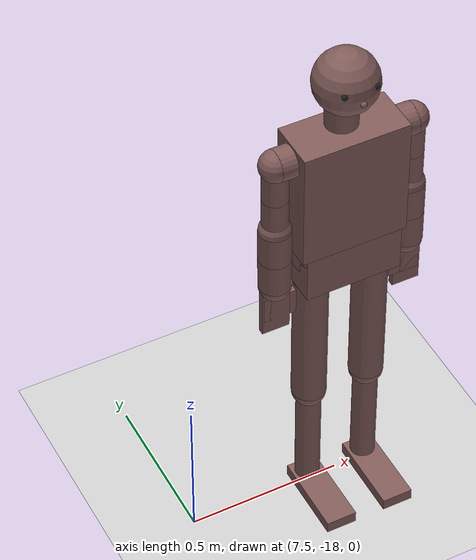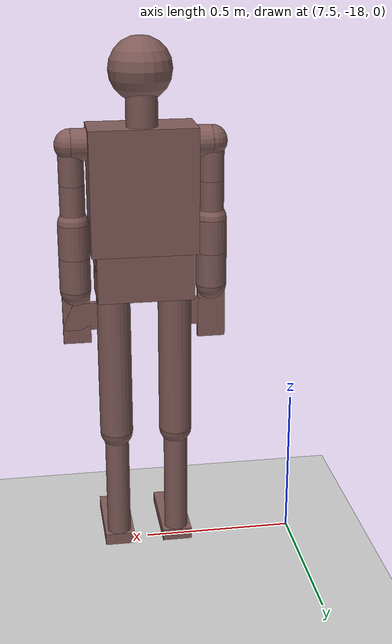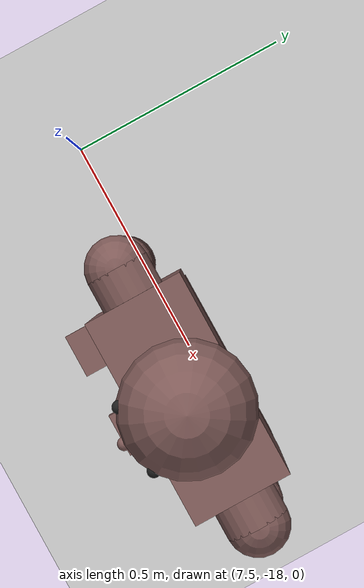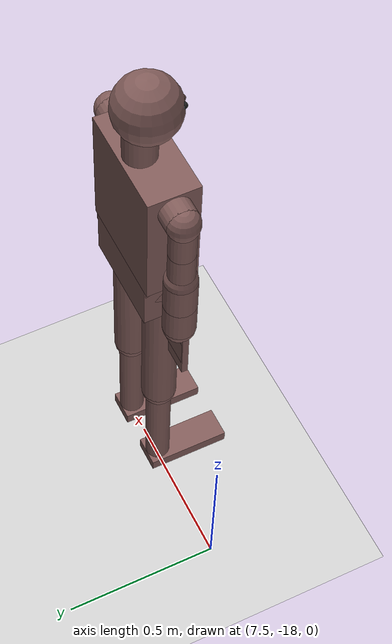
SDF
<sdf version="1.6">
 <world name="default">
  <model name="ground_plane">
   <static>1</static>
   <link name="link">
    <collision name="collision">
     <geometry><plane><normal>0 0 1</normal><size>100 100</size></plane></geometry>
     <surface><friction><ode><mu>100</mu><mu2>50</mu2></ode></friction></surface>
    </collision>
    <visual name="visual">
     <cast_shadows>0</cast_shadows>
     <geometry><plane><normal>0 0 1</normal><size>100 100</size></plane></geometry>
     <material>
      <script><uri>file://media/materials/scripts/gazebo.material</uri><name>Gazebo/Grey</name></script>
     </material>
    </visual>
   </link>
  </model>
  <model name="victim175">
   <static>1</static>
   <self_collide>1</self_collide>
   <link name="head">
    <pose>0 0 1.625 0 -0 0</pose>
    <visual name="visual">
     <geometry><sphere><radius>0.1</radius></sphere></geometry>
     <material>
      <emissive>0.5 0.355 0.345 1</emissive>
      <ambient>0.5 0.355 0.345 1</ambient>
      <diffuse>0.5 0.355 0.345 1</diffuse>
      <specular>0 0 0 0</specular>
     </material>
    </visual>
    <collision name="collision"><geometry><sphere><radius>0.1</radius></sphere></geometry></collision>
    <visual name="visual_nose">
     <pose>0 -0.1 -0.01 0 -0 0</pose>
     <geometry><sphere><radius>0.01</radius></sphere></geometry>
     <material>
      <emissive>0.5 0.355 0.345 1</emissive>
      <ambient>0.5 0.355 0.345 1</ambient>
      <diffuse>0.5 0.355 0.345 1</diffuse>
      <specular>0 0 0 0</specular>
     </material>
    </visual>
    <visual name="visual_rEye">
     <pose>-0.05 -0.08 0.02 0 -0 0</pose>
     <geometry><sphere><radius>0.01</radius></sphere></geometry>
     <material>
      <script><uri>file://media/materials/scripts/gazebo.material</uri><name>Gazebo/Black</name></script>
     </material>
    </visual>
    <visual name="visual_lEye">
     <pose>0.05 -0.08 0.02 0 -0 0</pose>
     <geometry><sphere><radius>0.01</radius></sphere></geometry>
     <material>
      <script><uri>file://media/materials/scripts/gazebo.material</uri><name>Gazebo/Black</name></script>
     </material>
    </visual>
    <self_collide>1</self_collide>
   </link>
   <link name="neck">
    <pose>0 0.02 1.49 0 -0 0</pose>
    <visual name="visual">
     <geometry><cylinder><radius>0.05</radius><length>0.15</length></cylinder></geometry>
     <material>
      <emissive>0.5 0.355 0.345 1</emissive>
      <ambient>0.5 0.355 0.345 1</ambient>
      <diffuse>0.5 0.355 0.345 1</diffuse>
      <specular>0 0 0 0</specular>
     </material>
    </visual>
    <collision name="collision">
     <geometry><cylinder><radius>0.05</radius><length>0.15</length></cylinder></geometry>
    </collision>
    <self_collide>1</self_collide>
   </link>
   <joint name="neck_head" type="revolute">
    <pose>0 0.02 -0.075 0 -0 0</pose>
    <child>head</child>
    <parent>neck</parent>
    <axis>
     <xyz>0 0 -1</xyz>
     <limit><lower>-1.7</lower><upper>1.7</upper></limit>
     <dynamics>
      <friction>0.01</friction>
      <spring_reference>0</spring_reference>
      <spring_stiffness>0</spring_stiffness>
     </dynamics>
     <use_parent_model_frame>0</use_parent_model_frame>
    </axis>
   </joint>
   <link name="body">
    <pose>0 0 1.255 0 -0 0</pose>
    <visual name="visual">
     <geometry><box><size>0.34 0.16 0.4</size></box></geometry>
     <material>
      <emissive>0.5 0.355 0.345 1</emissive>
      <ambient>0.5 0.355 0.345 1</ambient>
      <diffuse>0.5 0.355 0.345 1</diffuse>
      <specular>0 0 0 0</specular>
     </material>
    </visual>
    <collision name="collision"><geometry><box><size>0.34 0.16 0.4</size></box></geometry></collision>
    <self_collide>1</self_collide>
   </link>
   <joint name="body_neck" type="revolute">
    <pose>0 0.06 -0.075 0 -0 0</pose>
    <child>neck</child>
    <parent>body</parent>
    <axis>
     <xyz>1 0 0</xyz>
     <limit><lower>-0.2</lower><upper>1</upper></limit>
     <dynamics>
      <friction>0.01</friction>
      <spring_reference>0</spring_reference>
      <spring_stiffness>0</spring_stiffness>
     </dynamics>
     <use_parent_model_frame>0</use_parent_model_frame>
    </axis>
   </joint>
   <link name="waist">
    <pose>0 0 1.005 0 -0 0</pose>
    <visual name="visual">
     <pose>0 0 -0.025 0 -0 0</pose>
     <geometry><box><size>0.31 0.16 0.15</size></box></geometry>
     <material>
      <emissive>0.5 0.355 0.345 1</emissive>
      <ambient>0.5 0.355 0.345 1</ambient>
      <diffuse>0.5 0.355 0.345 1</diffuse>
      <specular>0 0 0 0</specular>
     </material>
    </visual>
    <collision name="collision"><geometry><box><size>0.31 0.16 0.1</size></box></geometry></collision>
    <visual name="visual2">
     <pose>0 0 0.05 3.14159 1.57079 3.14159</pose>
     <geometry><cylinder><radius>0.08</radius><length>0.31</length></cylinder></geometry>
     <material>
      <emissive>0.5 0.355 0.345 1</emissive>
      <ambient>0.5 0.355 0.345 1</ambient>
      <diffuse>0.5 0.355 0.345 1</diffuse>
      <specular>0 0 0 0</specular>
     </material>
    </visual>
    <collision name="collision2">
     <pose>0 0 0.05 3.14159 1.57079 3.14159</pose>
     <geometry><cylinder><radius>0.08</radius><length>0.31</length></cylinder></geometry>
    </collision>
    <self_collide>1</self_collide>
   </link>
   <joint name="body_waist" type="revolute">
    <pose>0 0 0.05 0 -0 0</pose>
    <child>waist</child>
    <parent>body</parent>
    <axis>
     <xyz>-1 0 0</xyz>
     <limit><lower>0</lower><upper>0</upper></limit>
     <dynamics>
      <friction>0.01</friction>
      <spring_reference>0</spring_reference>
      <spring_stiffness>0</spring_stiffness>
     </dynamics>
     <use_parent_model_frame>0</use_parent_model_frame>
    </axis>
   </joint>
   <link name="rHand">
    <pose>-0.22 0 0.84 0 -0 0</pose>
    <visual name="visual">
     <geometry><box><size>0.09 0.02 0.18</size></box></geometry>
     <material>
      <emissive>0.5 0.355 0.345 1</emissive>
      <ambient>0.5 0.355 0.345 1</ambient>
      <diffuse>0.5 0.355 0.345 1</diffuse>
      <specular>0 0 0 0</specular>
     </material>
    </visual>
    <collision name="collision"><geometry><box><size>0.09 0.02 0.18</size></box></geometry></collision>
    <visual name="visual2">
     <pose>0.02 0 0 0 -0 0</pose>
     <geometry><box><size>0.12 0.02 0.09</size></box></geometry>
     <material>
      <emissive>0.5 0.355 0.345 1</emissive>
      <ambient>0.5 0.355 0.345 1</ambient>
      <diffuse>0.5 0.355 0.345 1</diffuse>
      <specular>0 0 0 0</specular>
     </material>
    </visual>
    <collision name="collision2">
     <pose>0.02 0 0 0 -0 0</pose>
     <geometry><box><size>0.12 0.02 0.09</size></box></geometry>
    </collision>
    <self_collide>1</self_collide>
   </link>
   <link name="lHand">
    <pose>0.22 0 0.84 0 -0 0</pose>
    <visual name="visual">
     <geometry><box><size>0.09 0.02 0.18</size></box></geometry>
     <material>
      <emissive>0.5 0.355 0.345 1</emissive>
      <ambient>0.5 0.355 0.345 1</ambient>
      <diffuse>0.5 0.355 0.345 1</diffuse>
      <specular>0 0 0 0</specular>
     </material>
    </visual>
    <collision name="collision"><geometry><box><size>0.09 0.02 0.18</size></box></geometry></collision>
    <visual name="visual2">
     <pose>-0.02 0 0 0 -0 0</pose>
     <geometry><box><size>0.12 0.02 0.09</size></box></geometry>
     <material>
      <emissive>0.5 0.355 0.345 1</emissive>
      <ambient>0.5 0.355 0.345 1</ambient>
      <diffuse>0.5 0.355 0.345 1</diffuse>
      <specular>0 0 0 0</specular>
     </material>
    </visual>
    <collision name="collision2">
     <pose>-0.02 0 0 0 -0 0</pose>
     <geometry><box><size>0.12 0.02 0.09</size></box></geometry>
    </collision>
    <self_collide>1</self_collide>
   </link>
   <link name="rFoot">
    <pose>-0.1 -0.095 0.02 0 -0 0</pose>
    <visual name="visual">
     <geometry><box><size>0.1 0.27 0.04</size></box></geometry>
     <material>
      <emissive>0.5 0.355 0.345 1</emissive>
      <ambient>0.5 0.355 0.345 1</ambient>
      <diffuse>0.5 0.355 0.345 1</diffuse>
      <specular>0 0 0 0</specular>
     </material>
    </visual>
    <collision name="collision"><geometry><box><size>0.1 0.27 0.04</size></box></geometry></collision>
    <self_collide>1</self_collide>
   </link>
   <link name="lFoot">
    <pose>0.1 -0.095 0.02 0 -0 0</pose>
    <visual name="visual">
     <geometry><box><size>0.1 0.27 0.04</size></box></geometry>
     <material>
      <emissive>0.5 0.355 0.345 1</emissive>
      <ambient>0.5 0.355 0.345 1</ambient>
      <diffuse>0.5 0.355 0.345 1</diffuse>
      <specular>0 0 0 0</specular>
     </material>
    </visual>
    <collision name="collision"><geometry><box><size>0.1 0.27 0.04</size></box></geometry></collision>
    <self_collide>1</self_collide>
   </link>
   <link name="rLeg2">
    <pose>-0.1 0 0.23 0 -0 0</pose>
    <visual name="visual">
     <geometry><cylinder><radius>0.04</radius><length>0.38</length></cylinder></geometry>
     <material>
      <emissive>0.5 0.355 0.345 1</emissive>
      <ambient>0.5 0.355 0.345 1</ambient>
      <diffuse>0.5 0.355 0.345 1</diffuse>
      <specular>0 0 0 0</specular>
     </material>
    </visual>
    <collision name="collision">
     <geometry><cylinder><radius>0.04</radius><length>0.38</length></cylinder></geometry>
    </collision>
    <visual name="visual2">
     <pose>0 0 -0.19 0 -0 0</pose>
     <geometry><sphere><radius>0.04</radius></sphere></geometry>
     <material>
      <emissive>0.5 0.355 0.345 1</emissive>
      <ambient>0.5 0.355 0.345 1</ambient>
      <diffuse>0.5 0.355 0.345 1</diffuse>
      <specular>0 0 0 0</specular>
     </material>
    </visual>
    <collision name="collision2">
     <pose>0 0 -0.19 0 -0 0</pose>
     <geometry><sphere><radius>0.04</radius></sphere></geometry>
    </collision>
    <self_collide>1</self_collide>
   </link>
   <link name="lLeg2">
    <pose>0.1 0 0.23 0 -0 0</pose>
    <visual name="visual">
     <geometry><cylinder><radius>0.04</radius><length>0.38</length></cylinder></geometry>
     <material>
      <emissive>0.5 0.355 0.345 1</emissive>
      <ambient>0.5 0.355 0.345 1</ambient>
      <diffuse>0.5 0.355 0.345 1</diffuse>
      <specular>0 0 0 0</specular>
     </material>
    </visual>
    <collision name="collision">
     <geometry><cylinder><radius>0.04</radius><length>0.38</length></cylinder></geometry>
    </collision>
    <visual name="visual2">
     <pose>0 0 -0.19 0 -0 0</pose>
     <geometry><sphere><radius>0.04</radius></sphere></geometry>
     <material>
      <emissive>0.5 0.355 0.345 1</emissive>
      <ambient>0.5 0.355 0.345 1</ambient>
      <diffuse>0.5 0.355 0.345 1</diffuse>
      <specular>0 0 0 0</specular>
     </material>
    </visual>
    <collision name="collision2">
     <pose>0 0 -0.19 0 -0 0</pose>
     <geometry><sphere><radius>0.04</radius></sphere></geometry>
    </collision>
    <self_collide>1</self_collide>
   </link>
   <joint name="rLeg2_rFoot" type="revolute">
    <pose>0 0.095 0.02 0 -0 0</pose>
    <child>rFoot</child>
    <parent>rLeg2</parent>
    <axis>
     <xyz>1 0 0</xyz>
     <limit><lower>0</lower><upper>0</upper></limit>
     <dynamics>
      <friction>0.01</friction>
      <spring_reference>0</spring_reference>
      <spring_stiffness>0</spring_stiffness>
     </dynamics>
     <use_parent_model_frame>0</use_parent_model_frame>
    </axis>
   </joint>
   <joint name="lLeg2_lFoot" type="revolute">
    <pose>0 0.095 0.02 0 -0 0</pose>
    <child>lFoot</child>
    <parent>lLeg2</parent>
    <axis>
     <xyz>1 0 0</xyz>
     <limit><lower>0</lower><upper>0</upper></limit>
     <dynamics>
      <friction>0.01</friction>
      <spring_reference>0</spring_reference>
      <spring_stiffness>0</spring_stiffness>
     </dynamics>
     <use_parent_model_frame>0</use_parent_model_frame>
    </axis>
   </joint>
   <link name="rLeg1">
    <pose>-0.1 0 0.66 0 -0 0</pose>
    <visual name="visual">
     <geometry><cylinder><radius>0.055</radius><length>0.48</length></cylinder></geometry>
     <material>
      <emissive>0.5 0.355 0.345 1</emissive>
      <ambient>0.5 0.355 0.345 1</ambient>
      <diffuse>0.5 0.355 0.345 1</diffuse>
      <specular>0 0 0 0</specular>
     </material>
    </visual>
    <collision name="collision">
     <geometry><cylinder><radius>0.055</radius><length>0.48</length></cylinder></geometry>
    </collision>
    <visual name="visual2">
     <pose>0 0 -0.24 0 -0 0</pose>
     <geometry><sphere><radius>0.055</radius></sphere></geometry>
     <material>
      <emissive>0.5 0.355 0.345 1</emissive>
      <ambient>0.5 0.355 0.345 1</ambient>
      <diffuse>0.5 0.355 0.345 1</diffuse>
      <specular>0 0 0 0</specular>
     </material>
    </visual>
    <collision name="collision2">
     <pose>0 0 -0.24 0 -0 0</pose>
     <geometry><sphere><radius>0.055</radius></sphere></geometry>
    </collision>
    <visual name="visual3">
     <pose>0 0 0.24 0 -0 0</pose>
     <geometry><sphere><radius>0.055</radius></sphere></geometry>
     <material>
      <emissive>0.5 0.355 0.345 1</emissive>
      <ambient>0.5 0.355 0.345 1</ambient>
      <diffuse>0.5 0.355 0.345 1</diffuse>
      <specular>0 0 0 0</specular>
     </material>
    </visual>
    <collision name="collision3">
     <pose>0 0 0.24 0 -0 0</pose>
     <geometry><sphere><radius>0.055</radius></sphere></geometry>
    </collision>
    <self_collide>1</self_collide>
   </link>
   <link name="lLeg1">
    <pose>0.1 0 0.66 0 -0 0</pose>
    <visual name="visual">
     <geometry><cylinder><radius>0.055</radius><length>0.48</length></cylinder></geometry>
     <material>
      <emissive>0.5 0.355 0.345 1</emissive>
      <ambient>0.5 0.355 0.345 1</ambient>
      <diffuse>0.5 0.355 0.345 1</diffuse>
      <specular>0 0 0 0</specular>
     </material>
    </visual>
    <collision name="collision">
     <geometry><cylinder><radius>0.055</radius><length>0.48</length></cylinder></geometry>
    </collision>
    <visual name="visual2">
     <pose>0 0 -0.24 0 -0 0</pose>
     <geometry><sphere><radius>0.055</radius></sphere></geometry>
     <material>
      <emissive>0.5 0.355 0.345 1</emissive>
      <ambient>0.5 0.355 0.345 1</ambient>
      <diffuse>0.5 0.355 0.345 1</diffuse>
      <specular>0 0 0 0</specular>
     </material>
    </visual>
    <collision name="collision2">
     <pose>0 0 -0.24 0 -0 0</pose>
     <geometry><sphere><radius>0.055</radius></sphere></geometry>
    </collision>
    <visual name="visual3">
     <pose>0 0 0.24 0 -0 0</pose>
     <geometry><sphere><radius>0.055</radius></sphere></geometry>
     <material>
      <emissive>0.5 0.355 0.345 1</emissive>
      <ambient>0.5 0.355 0.345 1</ambient>
      <diffuse>0.5 0.355 0.345 1</diffuse>
      <specular>0 0 0 0</specular>
     </material>
    </visual>
    <collision name="collision3">
     <pose>0 0 0.24 0 -0 0</pose>
     <geometry><sphere><radius>0.055</radius></sphere></geometry>
    </collision>
    <self_collide>1</self_collide>
   </link>
   <joint name="rLeg1_rLeg2" type="revolute">
    <pose>0 0 0.19 0 -0 0</pose>
    <child>rLeg2</child>
    <parent>rLeg1</parent>
    <axis>
     <xyz>1 0 0</xyz>
     <limit><lower>0</lower><upper>0</upper></limit>
     <dynamics>
      <friction>0.01</friction>
      <spring_reference>0</spring_reference>
      <spring_stiffness>0</spring_stiffness>
     </dynamics>
     <use_parent_model_frame>0</use_parent_model_frame>
    </axis>
   </joint>
   <joint name="lLeg1_lLeg2" type="revolute">
    <pose>0 0 0.19 0 -0 0</pose>
    <child>lLeg2</child>
    <parent>lLeg1</parent>
    <axis>
     <xyz>1 0 0</xyz>
     <limit><lower>0</lower><upper>0</upper></limit>
     <dynamics>
      <friction>0.01</friction>
      <spring_reference>0</spring_reference>
      <spring_stiffness>0</spring_stiffness>
     </dynamics>
     <use_parent_model_frame>0</use_parent_model_frame>
    </axis>
   </joint>
   <link name="rButt">
    <pose>-0.1 0 0.9275 0 -0 0</pose>
    <visual name="visual">
     <geometry><cylinder><radius>0.055</radius><length>0.055</length></cylinder></geometry>
     <material>
      <emissive>0.5 0.355 0.345 1</emissive>
      <ambient>0.5 0.355 0.345 1</ambient>
      <diffuse>0.5 0.355 0.345 1</diffuse>
      <specular>0 0 0 0</specular>
     </material>
    </visual>
    <collision name="collision">
     <geometry><cylinder><radius>0.055</radius><length>0.055</length></cylinder></geometry>
    </collision>
    <self_collide>1</self_collide>
   </link>
   <link name="lButt">
    <pose>0.1 0 0.9275 0 -0 0</pose>
    <visual name="visual">
     <geometry><cylinder><radius>0.055</radius><length>0.055</length></cylinder></geometry>
     <material>
      <emissive>0.5 0.355 0.345 1</emissive>
      <ambient>0.5 0.355 0.345 1</ambient>
      <diffuse>0.5 0.355 0.345 1</diffuse>
      <specular>0 0 0 0</specular>
     </material>
    </visual>
    <collision name="collision">
     <geometry><cylinder><radius>0.055</radius><length>0.055</length></cylinder></geometry>
    </collision>
    <self_collide>1</self_collide>
   </link>
   <joint name="rButt_rLeg1" type="revolute">
    <pose>0 0 0.24 0 -0 0</pose>
    <child>rLeg1</child>
    <parent>rButt</parent>
    <axis>
     <xyz>1 0 0</xyz>
     <limit><lower>0</lower><upper>0</upper></limit>
     <dynamics>
      <friction>0.01</friction>
      <spring_reference>0</spring_reference>
      <spring_stiffness>0</spring_stiffness>
     </dynamics>
     <use_parent_model_frame>0</use_parent_model_frame>
    </axis>
   </joint>
   <joint name="lButt_lLeg1" type="revolute">
    <pose>0 0 0.24 0 -0 0</pose>
    <child>lLeg1</child>
    <parent>lButt</parent>
    <axis>
     <xyz>1 0 0</xyz>
     <limit><lower>0</lower><upper>0</upper></limit>
     <dynamics>
      <friction>0.01</friction>
      <spring_reference>0</spring_reference>
      <spring_stiffness>0</spring_stiffness>
     </dynamics>
     <use_parent_model_frame>0</use_parent_model_frame>
    </axis>
   </joint>
   <joint name="waist_rButt" type="revolute">
    <child>rButt</child>
    <parent>waist</parent>
    <axis>
     <xyz>0 0 -1</xyz>
     <limit><lower>-1</lower><upper>1</upper></limit>
     <dynamics>
      <friction>0.01</friction>
      <spring_reference>0</spring_reference>
      <spring_stiffness>0</spring_stiffness>
     </dynamics>
     <use_parent_model_frame>0</use_parent_model_frame>
    </axis>
   </joint>
   <joint name="waist_lButt" type="revolute">
    <child>lButt</child>
    <parent>waist</parent>
    <axis>
     <xyz>0 0 1</xyz>
     <limit><lower>-1</lower><upper>1</upper></limit>
     <dynamics>
      <friction>0.01</friction>
      <spring_reference>0</spring_reference>
      <spring_stiffness>0</spring_stiffness>
     </dynamics>
     <use_parent_model_frame>0</use_parent_model_frame>
    </axis>
   </joint>
   <link name="rShoulder">
    <pose>-0.195 0 1.4 0 -0 0</pose>
    <visual name="visual">
     <pose>0 0 0 3.14159 1.57079 3.14159</pose>
     <geometry><cylinder><radius>0.05</radius><length>0.05</length></cylinder></geometry>
     <material>
      <emissive>0.5 0.355 0.345 1</emissive>
      <ambient>0.5 0.355 0.345 1</ambient>
      <diffuse>0.5 0.355 0.345 1</diffuse>
      <specular>0 0 0 0</specular>
     </material>
    </visual>
    <collision name="collision">
     <pose>0 0 0 3.14159 1.57079 3.14159</pose>
     <geometry><cylinder><radius>0.05</radius><length>0.05</length></cylinder></geometry>
    </collision>
    <self_collide>1</self_collide>
   </link>
   <link name="lShoulder">
    <pose>0.195 0 1.4 0 -0 0</pose>
    <visual name="visual">
     <pose>0 0 0 3.14159 1.57079 3.14159</pose>
     <geometry><cylinder><radius>0.05</radius><length>0.05</length></cylinder></geometry>
     <material>
      <emissive>0.5 0.355 0.345 1</emissive>
      <ambient>0.5 0.355 0.345 1</ambient>
      <diffuse>0.5 0.355 0.345 1</diffuse>
      <specular>0 0 0 0</specular>
     </material>
    </visual>
    <collision name="collision">
     <pose>0 0 0 3.14159 1.57079 3.14159</pose>
     <geometry><cylinder><radius>0.05</radius><length>0.05</length></cylinder></geometry>
    </collision>
    <self_collide>1</self_collide>
   </link>
   <joint name="body_rShoulder" type="revolute">
    <child>rShoulder</child>
    <parent>body</parent>
    <axis>
     <xyz>-1 0 0</xyz>
     <limit><lower>-1.5708</lower><upper>3.2</upper></limit>
     <dynamics>
      <friction>0.01</friction>
      <spring_reference>0</spring_reference>
      <spring_stiffness>0</spring_stiffness>
     </dynamics>
     <use_parent_model_frame>0</use_parent_model_frame>
    </axis>
   </joint>
   <joint name="body_lShoulder" type="revolute">
    <child>lShoulder</child>
    <parent>body</parent>
    <axis>
     <xyz>1 0 0</xyz>
     <limit><lower>-1.5708</lower><upper>3.2</upper></limit>
     <dynamics>
      <friction>0.01</friction>
      <spring_reference>0</spring_reference>
      <spring_stiffness>0</spring_stiffness>
     </dynamics>
     <use_parent_model_frame>0</use_parent_model_frame>
    </axis>
   </joint>
   <link name="rArm1U">
    <pose>-0.22 0 1.3375 0 -0 0</pose>
    <visual name="visual">
     <geometry><cylinder><radius>0.04</radius><length>0.125</length></cylinder></geometry>
     <material>
      <emissive>0.5 0.355 0.345 1</emissive>
      <ambient>0.5 0.355 0.345 1</ambient>
      <diffuse>0.5 0.355 0.345 1</diffuse>
      <specular>0 0 0 0</specular>
     </material>
    </visual>
    <collision name="collision">
     <geometry><cylinder><radius>0.04</radius><length>0.125</length></cylinder></geometry>
    </collision>
    <visual name="visual2">
     <pose>0 0 0.0625 0 -0 0</pose>
     <geometry><sphere><radius>0.05</radius></sphere></geometry>
     <material>
      <emissive>0.5 0.355 0.345 1</emissive>
      <ambient>0.5 0.355 0.345 1</ambient>
      <diffuse>0.5 0.355 0.345 1</diffuse>
      <specular>0 0 0 0</specular>
     </material>
    </visual>
    <collision name="collision2">
     <pose>0 0 0.0625 0 -0 0</pose>
     <geometry><sphere><radius>0.05</radius></sphere></geometry>
    </collision>
    <self_collide>1</self_collide>
   </link>
   <link name="rArm1L">
    <pose>-0.22 0 1.2125 0 -0 0</pose>
    <visual name="visual">
     <geometry><cylinder><radius>0.04</radius><length>0.125</length></cylinder></geometry>
     <material>
      <emissive>0.5 0.355 0.345 1</emissive>
      <ambient>0.5 0.355 0.345 1</ambient>
      <diffuse>0.5 0.355 0.345 1</diffuse>
      <specular>0 0 0 0</specular>
     </material>
    </visual>
    <collision name="collision">
     <geometry><cylinder><radius>0.04</radius><length>0.125</length></cylinder></geometry>
    </collision>
    <visual name="visual2">
     <pose>0 0 -0.0625 0 -0 0</pose>
     <geometry><sphere><radius>0.05</radius></sphere></geometry>
     <material>
      <emissive>0.5 0.355 0.345 1</emissive>
      <ambient>0.5 0.355 0.345 1</ambient>
      <diffuse>0.5 0.355 0.345 1</diffuse>
      <specular>0 0 0 0</specular>
     </material>
    </visual>
    <collision name="collision2">
     <pose>0 0 -0.0625 0 -0 0</pose>
     <geometry><sphere><radius>0.05</radius></sphere></geometry>
    </collision>
    <self_collide>1</self_collide>
   </link>
   <joint name="rArm1U_rArm1L" type="revolute">
    <pose>0 0 0.0625 0 -0 0</pose>
    <child>rArm1L</child>
    <parent>rArm1U</parent>
    <axis>
     <xyz>0 0 -1</xyz>
     <limit><lower>-1.5708</lower><upper>1.5708</upper></limit>
     <dynamics>
      <friction>0.01</friction>
      <spring_reference>0</spring_reference>
      <spring_stiffness>0</spring_stiffness>
     </dynamics>
     <use_parent_model_frame>0</use_parent_model_frame>
    </axis>
   </joint>
   <link name="lArm1U">
    <pose>0.22 0 1.3375 0 -0 0</pose>
    <visual name="visual">
     <geometry><cylinder><radius>0.04</radius><length>0.125</length></cylinder></geometry>
     <material>
      <emissive>0.5 0.355 0.345 1</emissive>
      <ambient>0.5 0.355 0.345 1</ambient>
      <diffuse>0.5 0.355 0.345 1</diffuse>
      <specular>0 0 0 0</specular>
     </material>
    </visual>
    <collision name="collision">
     <geometry><cylinder><radius>0.04</radius><length>0.125</length></cylinder></geometry>
    </collision>
    <visual name="visual2">
     <pose>0 0 0.0625 0 -0 0</pose>
     <geometry><sphere><radius>0.05</radius></sphere></geometry>
     <material>
      <emissive>0.5 0.355 0.345 1</emissive>
      <ambient>0.5 0.355 0.345 1</ambient>
      <diffuse>0.5 0.355 0.345 1</diffuse>
      <specular>0 0 0 0</specular>
     </material>
    </visual>
    <collision name="collision2">
     <pose>0 0 0.0625 0 -0 0</pose>
     <geometry><sphere><radius>0.05</radius></sphere></geometry>
    </collision>
    <self_collide>1</self_collide>
   </link>
   <link name="lArm1L">
    <pose>0.22 0 1.2125 0 -0 0</pose>
    <visual name="visual">
     <geometry><cylinder><radius>0.04</radius><length>0.125</length></cylinder></geometry>
     <material>
      <emissive>0.5 0.355 0.345 1</emissive>
      <ambient>0.5 0.355 0.345 1</ambient>
      <diffuse>0.5 0.355 0.345 1</diffuse>
      <specular>0 0 0 0</specular>
     </material>
    </visual>
    <collision name="collision">
     <geometry><cylinder><radius>0.04</radius><length>0.125</length></cylinder></geometry>
    </collision>
    <visual name="visual2">
     <pose>0 0 -0.0625 0 -0 0</pose>
     <geometry><sphere><radius>0.05</radius></sphere></geometry>
     <material>
      <emissive>0.5 0.355 0.345 1</emissive>
      <ambient>0.5 0.355 0.345 1</ambient>
      <diffuse>0.5 0.355 0.345 1</diffuse>
      <specular>0 0 0 0</specular>
     </material>
    </visual>
    <collision name="collision2">
     <pose>0 0 -0.0625 0 -0 0</pose>
     <geometry><sphere><radius>0.05</radius></sphere></geometry>
    </collision>
    <self_collide>1</self_collide>
   </link>
   <joint name="lArm1U_lArm1L" type="revolute">
    <pose>0 0 0.0625 0 -0 0</pose>
    <child>lArm1L</child>
    <parent>lArm1U</parent>
    <axis>
     <xyz>0 0 1</xyz>
     <limit><lower>-1.5708</lower><upper>1.5708</upper></limit>
     <dynamics>
      <friction>0.01</friction>
      <spring_reference>0</spring_reference>
      <spring_stiffness>0</spring_stiffness>
     </dynamics>
     <use_parent_model_frame>0</use_parent_model_frame>
    </axis>
   </joint>
   <joint name="rShoulder_rArm1" type="revolute">
    <pose>0 0 0.0625 0 -0 0</pose>
    <child>rArm1U</child>
    <parent>rShoulder</parent>
    <axis>
     <xyz>0 -1 0</xyz>
     <limit><lower>-1.5708</lower><upper>3.2</upper></limit>
     <dynamics>
      <friction>0.01</friction>
      <spring_reference>0</spring_reference>
      <spring_stiffness>0</spring_stiffness>
     </dynamics>
     <use_parent_model_frame>0</use_parent_model_frame>
    </axis>
   </joint>
   <joint name="lShoulder_lArm1" type="revolute">
    <pose>0 0 0.0625 0 -0 0</pose>
    <child>lArm1U</child>
    <parent>lShoulder</parent>
    <axis>
     <xyz>0 1 0</xyz>
     <limit><lower>-1.5708</lower><upper>3.2</upper></limit>
     <dynamics>
      <friction>0.01</friction>
      <spring_reference>0</spring_reference>
      <spring_stiffness>0</spring_stiffness>
     </dynamics>
     <use_parent_model_frame>0</use_parent_model_frame>
    </axis>
   </joint>
   <link name="rArm2U">
    <pose>-0.22 0 1.095 0 -0 0</pose>
    <visual name="visual">
     <geometry><cylinder><radius>0.05</radius><length>0.11</length></cylinder></geometry>
     <material>
      <emissive>0.5 0.355 0.345 1</emissive>
      <ambient>0.5 0.355 0.345 1</ambient>
      <diffuse>0.5 0.355 0.345 1</diffuse>
      <specular>0 0 0 0</specular>
     </material>
    </visual>
    <collision name="collision">
     <geometry><cylinder><radius>0.05</radius><length>0.11</length></cylinder></geometry>
    </collision>
    <self_collide>1</self_collide>
   </link>
   <link name="rArm2L">
    <pose>-0.22 0 0.985 0 -0 0</pose>
    <visual name="visual">
     <geometry><cylinder><radius>0.05</radius><length>0.11</length></cylinder></geometry>
     <material>
      <emissive>0.5 0.355 0.345 1</emissive>
      <ambient>0.5 0.355 0.345 1</ambient>
      <diffuse>0.5 0.355 0.345 1</diffuse>
      <specular>0 0 0 0</specular>
     </material>
    </visual>
    <collision name="collision">
     <geometry><cylinder><radius>0.05</radius><length>0.11</length></cylinder></geometry>
    </collision>
    <visual name="visual2">
     <pose>0 0 -0.055 0 -0 0</pose>
     <geometry><sphere><radius>0.05</radius></sphere></geometry>
     <material>
      <emissive>0.5 0.355 0.345 1</emissive>
      <ambient>0.5 0.355 0.345 1</ambient>
      <diffuse>0.5 0.355 0.345 1</diffuse>
      <specular>0 0 0 0</specular>
     </material>
    </visual>
    <collision name="collision2">
     <pose>0 0 -0.055 0 -0 0</pose>
     <geometry><sphere><radius>0.05</radius></sphere></geometry>
    </collision>
    <self_collide>1</self_collide>
   </link>
   <joint name="rArm2U_rArm2L" type="revolute">
    <pose>0 0 0.055 0 -0 0</pose>
    <child>rArm2L</child>
    <parent>rArm2U</parent>
    <axis>
     <xyz>0 0 -1</xyz>
     <limit><lower>-1.5708</lower><upper>1.5708</upper></limit>
     <dynamics>
      <friction>0.01</friction>
      <spring_reference>0</spring_reference>
      <spring_stiffness>0</spring_stiffness>
     </dynamics>
     <use_parent_model_frame>0</use_parent_model_frame>
    </axis>
   </joint>
   <link name="lArm2U">
    <pose>0.22 0 1.095 0 -0 0</pose>
    <visual name="visual">
     <geometry><cylinder><radius>0.05</radius><length>0.11</length></cylinder></geometry>
     <material>
      <emissive>0.5 0.355 0.345 1</emissive>
      <ambient>0.5 0.355 0.345 1</ambient>
      <diffuse>0.5 0.355 0.345 1</diffuse>
      <specular>0 0 0 0</specular>
     </material>
    </visual>
    <collision name="collision">
     <geometry><cylinder><radius>0.05</radius><length>0.11</length></cylinder></geometry>
    </collision>
    <self_collide>1</self_collide>
   </link>
   <link name="lArm2L">
    <pose>0.22 0 0.985 0 -0 0</pose>
    <visual name="visual">
     <geometry><cylinder><radius>0.05</radius><length>0.11</length></cylinder></geometry>
     <material>
      <emissive>0.5 0.355 0.345 1</emissive>
      <ambient>0.5 0.355 0.345 1</ambient>
      <diffuse>0.5 0.355 0.345 1</diffuse>
      <specular>0 0 0 0</specular>
     </material>
    </visual>
    <collision name="collision">
     <geometry><cylinder><radius>0.05</radius><length>0.11</length></cylinder></geometry>
    </collision>
    <visual name="visual2">
     <pose>0 0 -0.055 0 -0 0</pose>
     <geometry><sphere><radius>0.05</radius></sphere></geometry>
     <material>
      <emissive>0.5 0.355 0.345 1</emissive>
      <ambient>0.5 0.355 0.345 1</ambient>
      <diffuse>0.5 0.355 0.345 1</diffuse>
      <specular>0 0 0 0</specular>
     </material>
    </visual>
    <collision name="collision2">
     <pose>0 0 -0.055 0 -0 0</pose>
     <geometry><sphere><radius>0.05</radius></sphere></geometry>
    </collision>
    <self_collide>1</self_collide>
   </link>
   <joint name="lArm2U_lArm2L" type="revolute">
    <pose>0 0 0.055 0 -0 0</pose>
    <child>lArm2L</child>
    <parent>lArm2U</parent>
    <axis>
     <xyz>0 0 1</xyz>
     <limit><lower>-1.5708</lower><upper>1.5708</upper></limit>
     <dynamics>
      <friction>0.01</friction>
      <spring_reference>0</spring_reference>
      <spring_stiffness>0</spring_stiffness>
     </dynamics>
     <use_parent_model_frame>0</use_parent_model_frame>
    </axis>
   </joint>
   <joint name="rArm1_rArm2" type="revolute">
    <pose>0 0 0.055 0 -0 0</pose>
    <child>rArm2U</child>
    <parent>rArm1L</parent>
    <axis>
     <xyz>-1 0 0</xyz>
     <limit><lower>0</lower><upper>2.8</upper></limit>
     <dynamics>
      <friction>0.01</friction>
      <spring_reference>0</spring_reference>
      <spring_stiffness>0</spring_stiffness>
     </dynamics>
     <use_parent_model_frame>0</use_parent_model_frame>
    </axis>
   </joint>
   <joint name="lArm1_lArm2" type="revolute">
    <pose>0 0 0.055 0 -0 0</pose>
    <child>lArm2U</child>
    <parent>lArm1L</parent>
    <axis>
     <xyz>-1 0 0</xyz>
     <limit><lower>0</lower><upper>2.8</upper></limit>
     <dynamics>
      <friction>0.01</friction>
      <spring_reference>0</spring_reference>
      <spring_stiffness>0</spring_stiffness>
     </dynamics>
     <use_parent_model_frame>0</use_parent_model_frame>
    </axis>
   </joint>
   <joint name="rArm2_rHand" type="revolute">
    <pose>0 0 0.09 0 -0 0</pose>
    <child>rHand</child>
    <parent>rArm2L</parent>
    <axis>
     <xyz>-1 0 0</xyz>
     <limit><lower>-1.57</lower><upper>1.4</upper></limit>
     <dynamics>
      <friction>0.01</friction>
      <spring_reference>0</spring_reference>
      <spring_stiffness>0</spring_stiffness>
     </dynamics>
     <use_parent_model_frame>0</use_parent_model_frame>
    </axis>
   </joint>
   <joint name="lArm2_lHand" type="revolute">
    <pose>0 0 0.09 0 -0 0</pose>
    <child>lHand</child>
    <parent>lArm2L</parent>
    <axis>
     <xyz>-1 0 0</xyz>
     <limit><lower>-1.57</lower><upper>1.4</upper></limit>
     <dynamics>
      <friction>0.01</friction>
      <spring_reference>0</spring_reference>
      <spring_stiffness>0</spring_stiffness>
     </dynamics>
     <use_parent_model_frame>0</use_parent_model_frame>
    </axis>
   </joint>
   <joint name="world_rFoot" type="revolute">
    <child>rFoot</child>
    <parent>world</parent>
    <axis>
     <xyz>0 0 1</xyz>
     <limit><lower>0</lower><upper>0</upper></limit>
     <use_parent_model_frame>0</use_parent_model_frame>
     <dynamics><spring_reference>0</spring_reference><spring_stiffness>0</spring_stiffness></dynamics>
    </axis>
   </joint>
   <joint name="world_lFoot" type="revolute">
    <child>lFoot</child>
    <parent>world</parent>
    <axis>
     <xyz>0 0 1</xyz>
     <limit><lower>0</lower><upper>0</upper></limit>
     <use_parent_model_frame>0</use_parent_model_frame>
     <dynamics><spring_reference>0</spring_reference><spring_stiffness>0</spring_stiffness></dynamics>
    </axis>
   </joint>
   <pose>8 -18 0 0 -0 0</pose>
  </model>
 </world>
</sdf>
